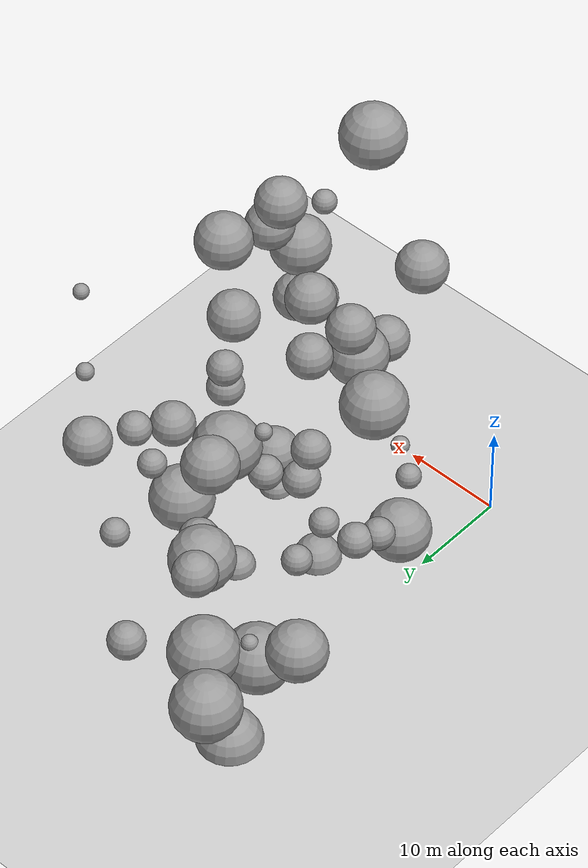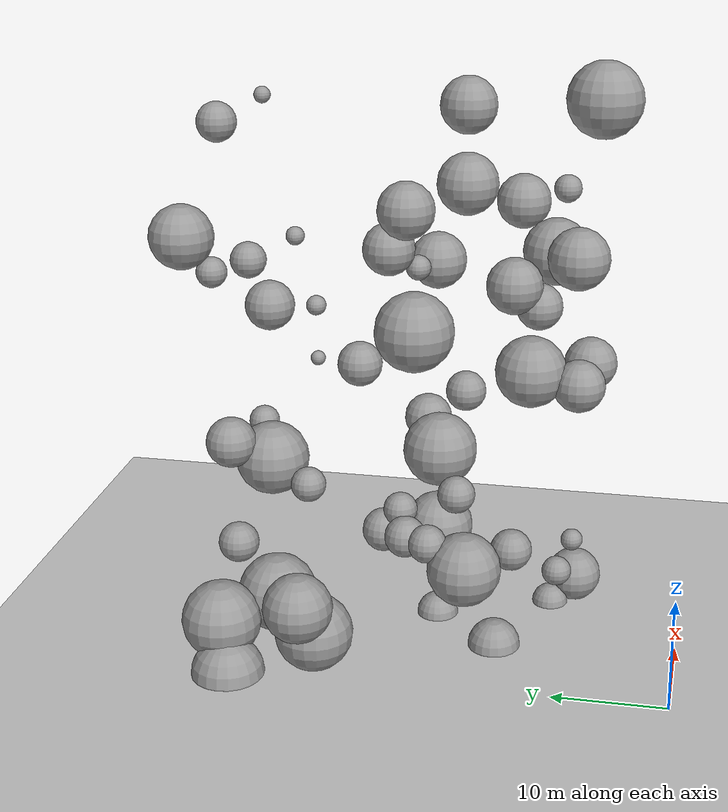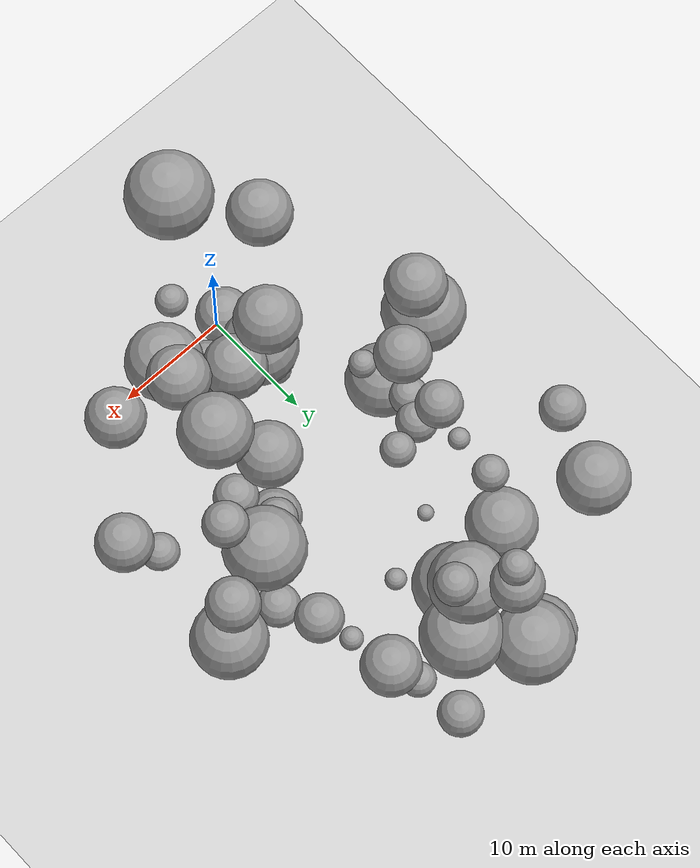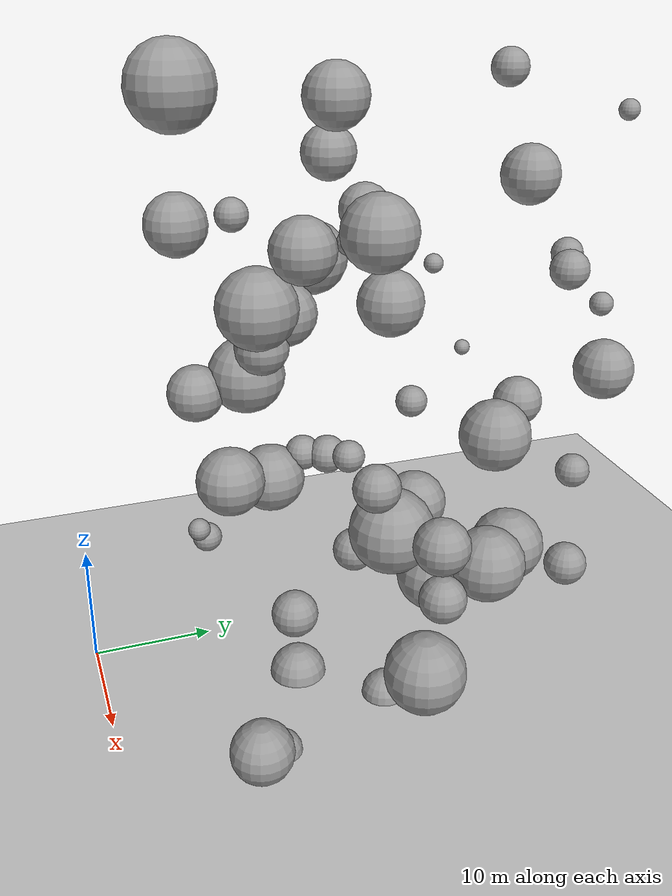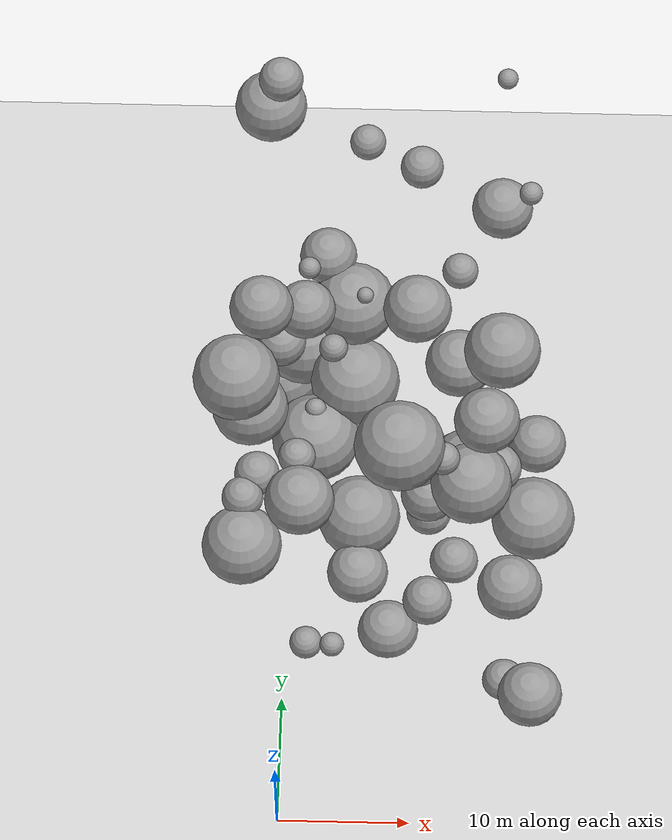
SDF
<sdf version="1.7">
 <world name="default">
  <model name="ground_plane">
   <static>1</static>
   <link name="link">
    <collision name="collision">
     <geometry><plane><normal>0 0 1</normal><size>100 100</size></plane></geometry>
     <surface>
      <contact><collide_bitmask>65535</collide_bitmask></contact>
      <friction><ode><mu>100</mu><mu2>50</mu2></ode></friction>
     </surface>
    </collision>
    <visual name="visual">
     <cast_shadows>0</cast_shadows>
     <geometry><plane><normal>0 0 1</normal><size>100 100</size></plane></geometry>
     <material>
      <script><uri>file://media/materials/scripts/gazebo.material</uri><name>Gazebo/Grey</name></script>
     </material>
    </visual>
   </link>
  </model>
  <model name="sphere_4">
   <static>1</static>
   <pose>16 38 47 0 0 0</pose>
   <link name="link">
    <inertial>
     <mass>164.46159977636265</mass>
     <inertia>
      <ixx>35.27294890430878</ixx>
      <iyy>35.27294890430878</iyy>
      <izz>35.27294890430878</izz>
      <ixy>0</ixy>
      <ixz>0</ixz>
      <iyz>0</iyz>
     </inertia>
    </inertial>
    <collision name="collision">
     <geometry><sphere><radius>0.732248741136081</radius></sphere></geometry>
    </collision>
    <visual name="visual">
     <geometry><sphere><radius>0.732248741136081</radius></sphere></geometry>
     <material>
      <script><uri>file://media/materials/scripts/gazebo.material</uri><name>Gazebo/Grey</name></script>
     </material>
    </visual>
   </link>
  </model>
  <model name="sphere_21">
   <static>1</static>
   <pose>6 40 34 0 0 0</pose>
   <link name="link">
    <inertial>
     <mass>948.6665397999582</mass>
     <inertia>
      <ixx>654.420492024396</ixx>
      <iyy>654.420492024396</iyy>
      <izz>654.420492024396</izz>
      <ixy>0</ixy>
      <ixz>0</ixz>
      <iyz>0</iyz>
     </inertia>
    </inertial>
    <collision name="collision">
     <geometry><sphere><radius>1.3132326080472079</radius></sphere></geometry>
    </collision>
    <visual name="visual">
     <geometry><sphere><radius>1.3132326080472079</radius></sphere></geometry>
     <material>
      <script><uri>file://media/materials/scripts/gazebo.material</uri><name>Gazebo/Grey</name></script>
     </material>
    </visual>
   </link>
  </model>
  <model name="sphere_29">
   <static>1</static>
   <pose>16 20 40 0 0 0</pose>
   <link name="link">
    <inertial>
     <mass>8313.901943358154</mass>
     <inertia>
      <ixx>24378.61797444489</ixx>
      <iyy>24378.61797444489</iyy>
      <izz>24378.61797444489</izz>
      <ixy>0</ixy>
      <ixz>0</ixz>
      <iyz>0</iyz>
     </inertia>
    </inertial>
    <collision name="collision">
     <geometry><sphere><radius>2.7075226362523988</radius></sphere></geometry>
    </collision>
    <visual name="visual">
     <geometry><sphere><radius>2.7075226362523988</radius></sphere></geometry>
     <material>
      <script><uri>file://media/materials/scripts/gazebo.material</uri><name>Gazebo/Grey</name></script>
     </material>
    </visual>
   </link>
  </model>
  <model name="sphere_38">
   <static>1</static>
   <pose>6 13 27 0 0 0</pose>
   <link name="link">
    <inertial>
     <mass>11012.262104970456</mass>
     <inertia>
      <ixx>38945.90657782049</ixx>
      <iyy>38945.90657782049</iyy>
      <izz>38945.90657782049</izz>
      <ixy>0</ixy>
      <ixz>0</ixz>
      <iyz>0</iyz>
     </inertia>
    </inertial>
    <collision name="collision">
     <geometry><sphere><radius>2.9734637165390647</radius></sphere></geometry>
    </collision>
    <visual name="visual">
     <geometry><sphere><radius>2.9734637165390647</radius></sphere></geometry>
     <material>
      <script><uri>file://media/materials/scripts/gazebo.material</uri><name>Gazebo/Grey</name></script>
     </material>
    </visual>
   </link>
  </model>
  <model name="sphere_43">
   <static>1</static>
   <pose>2 32 6 0 0 0</pose>
   <link name="link">
    <inertial>
     <mass>255.80845116134995</mass>
     <inertia>
      <ixx>73.65333202269129</ixx>
      <iyy>73.65333202269129</iyy>
      <izz>73.65333202269129</izz>
      <ixy>0</ixy>
      <ixz>0</ixz>
      <iyz>0</iyz>
     </inertia>
    </inertial>
    <collision name="collision">
     <geometry><sphere><radius>0.8484158231878176</radius></sphere></geometry>
    </collision>
    <visual name="visual">
     <geometry><sphere><radius>0.8484158231878176</radius></sphere></geometry>
     <material>
      <script><uri>file://media/materials/scripts/gazebo.material</uri><name>Gazebo/Grey</name></script>
     </material>
    </visual>
   </link>
  </model>
  <model name="sphere_44">
   <static>1</static>
   <pose>13 27 8 0 0 0</pose>
   <link name="link">
    <inertial>
     <mass>3346.033699596498</mass>
     <inertia>
      <ixx>5348.328852654719</ixx>
      <iyy>5348.328852654719</iyy>
      <izz>5348.328852654719</izz>
      <ixy>0</ixy>
      <ixz>0</ixz>
      <iyz>0</iyz>
     </inertia>
    </inertial>
    <collision name="collision">
     <geometry><sphere><radius>1.9990050922982885</radius></sphere></geometry>
    </collision>
    <visual name="visual">
     <geometry><sphere><radius>1.9990050922982885</radius></sphere></geometry>
     <material>
      <script><uri>file://media/materials/scripts/gazebo.material</uri><name>Gazebo/Grey</name></script>
     </material>
    </visual>
   </link>
  </model>
  <model name="sphere_50">
   <static>1</static>
   <pose>4 9 13 0 0 0</pose>
   <link name="link">
    <inertial>
     <mass>311.5289111056171</mass>
     <inertia>
      <ixx>102.28960784428814</ixx>
      <iyy>102.28960784428814</iyy>
      <izz>102.28960784428814</izz>
      <ixy>0</ixy>
      <ixz>0</ixz>
      <iyz>0</iyz>
     </inertia>
    </inertial>
    <collision name="collision">
     <geometry><sphere><radius>0.9060174923069318</radius></sphere></geometry>
    </collision>
    <visual name="visual">
     <geometry><sphere><radius>0.9060174923069318</radius></sphere></geometry>
     <material>
      <script><uri>file://media/materials/scripts/gazebo.material</uri><name>Gazebo/Grey</name></script>
     </material>
    </visual>
   </link>
  </model>
  <model name="sphere_59">
   <static>1</static>
   <pose>10 19 48 0 0 0</pose>
   <link name="link">
    <inertial>
     <mass>5522.667786096003</mass>
     <inertia>
      <ixx>12328.657388902782</ixx>
      <iyy>12328.657388902782</iyy>
      <izz>12328.657388902782</izz>
      <ixy>0</ixy>
      <ixz>0</ixz>
      <iyz>0</iyz>
     </inertia>
    </inertial>
    <collision name="collision">
     <geometry><sphere><radius>2.362400014546508</radius></sphere></geometry>
    </collision>
    <visual name="visual">
     <geometry><sphere><radius>2.362400014546508</radius></sphere></geometry>
     <material>
      <script><uri>file://media/materials/scripts/gazebo.material</uri><name>Gazebo/Grey</name></script>
     </material>
    </visual>
   </link>
  </model>
  <model name="sphere_75">
   <static>1</static>
   <pose>11 20 13 0 0 0</pose>
   <link name="link">
    <inertial>
     <mass>1990.0808988665112</mass>
     <inertia>
      <ixx>2249.669932823587</ixx>
      <iyy>2249.669932823587</iyy>
      <izz>2249.669932823587</izz>
      <ixy>0</ixy>
      <ixz>0</ixz>
      <iyz>0</iyz>
     </inertia>
    </inertial>
    <collision name="collision">
     <geometry><sphere><radius>1.6811019064408124</radius></sphere></geometry>
    </collision>
    <visual name="visual">
     <geometry><sphere><radius>1.6811019064408124</radius></sphere></geometry>
     <material>
      <script><uri>file://media/materials/scripts/gazebo.material</uri><name>Gazebo/Grey</name></script>
     </material>
    </visual>
   </link>
  </model>
  <model name="sphere_112">
   <static>1</static>
   <pose>14 12 35 0 0 0</pose>
   <link name="link">
    <inertial>
     <mass>9985.326316465182</mass>
     <inertia>
      <ixx>33082.9850346294</ixx>
      <iyy>33082.9850346294</iyy>
      <izz>33082.9850346294</izz>
      <ixy>0</ixy>
      <ixz>0</ixz>
      <iyz>0</iyz>
     </inertia>
    </inertial>
    <collision name="collision">
     <geometry><sphere><radius>2.8780028360772194</radius></sphere></geometry>
    </collision>
    <visual name="visual">
     <geometry><sphere><radius>2.8780028360772194</radius></sphere></geometry>
     <material>
      <script><uri>file://media/materials/scripts/gazebo.material</uri><name>Gazebo/Grey</name></script>
     </material>
    </visual>
   </link>
  </model>
  <model name="sphere_125">
   <static>1</static>
   <pose>4 22 36 0 0 0</pose>
   <link name="link">
    <inertial>
     <mass>443.5921031296742</mass>
     <inertia>
      <ixx>184.34891906320976</ixx>
      <iyy>184.34891906320976</iyy>
      <izz>184.34891906320976</izz>
      <ixy>0</ixy>
      <ixz>0</ixz>
      <iyz>0</iyz>
     </inertia>
    </inertial>
    <collision name="collision">
     <geometry><sphere><radius>1.019291491486583</radius></sphere></geometry>
    </collision>
    <visual name="visual">
     <geometry><sphere><radius>1.019291491486583</radius></sphere></geometry>
     <material>
      <script><uri>file://media/materials/scripts/gazebo.material</uri><name>Gazebo/Grey</name></script>
     </material>
    </visual>
   </link>
  </model>
  <model name="sphere_131">
   <static>1</static>
   <pose>11 13 31 0 0 0</pose>
   <link name="link">
    <inertial>
     <mass>3311.49689376639</mass>
     <inertia>
      <ixx>5256.639229539728</ixx>
      <iyy>5256.639229539728</iyy>
      <izz>5256.639229539728</izz>
      <ixy>0</ixy>
      <ixz>0</ixz>
      <iyz>0</iyz>
     </inertia>
    </inertial>
    <collision name="collision">
     <geometry><sphere><radius>1.9921035721734697</radius></sphere></geometry>
    </collision>
    <visual name="visual">
     <geometry><sphere><radius>1.9921035721734697</radius></sphere></geometry>
     <material>
      <script><uri>file://media/materials/scripts/gazebo.material</uri><name>Gazebo/Grey</name></script>
     </material>
    </visual>
   </link>
  </model>
  <model name="sphere_137">
   <static>1</static>
   <pose>12 11 41 0 0 0</pose>
   <link name="link">
    <inertial>
     <mass>654.1243881996492</mass>
     <inertia>
      <ixx>352.18281007678195</ixx>
      <iyy>352.18281007678195</iyy>
      <izz>352.18281007678195</izz>
      <ixy>0</ixy>
      <ixz>0</ixz>
      <iyz>0</iyz>
     </inertia>
    </inertial>
    <collision name="collision">
     <geometry><sphere><radius>1.1601760896681115</radius></sphere></geometry>
    </collision>
    <visual name="visual">
     <geometry><sphere><radius>1.1601760896681115</radius></sphere></geometry>
     <material>
      <script><uri>file://media/materials/scripts/gazebo.material</uri><name>Gazebo/Grey</name></script>
     </material>
    </visual>
   </link>
  </model>
  <model name="sphere_153">
   <static>1</static>
   <pose>16 20 21 0 0 0</pose>
   <link name="link">
    <inertial>
     <mass>2479.2162949740464</mass>
     <inertia>
      <ixx>3244.8275047282323</ixx>
      <iyy>3244.8275047282323</iyy>
      <izz>3244.8275047282323</izz>
      <ixy>0</ixy>
      <ixz>0</ixz>
      <iyz>0</iyz>
     </inertia>
    </inertial>
    <collision name="collision">
     <geometry><sphere><radius>1.808875192710845</radius></sphere></geometry>
    </collision>
    <visual name="visual">
     <geometry><sphere><radius>1.808875192710845</radius></sphere></geometry>
     <material>
      <script><uri>file://media/materials/scripts/gazebo.material</uri><name>Gazebo/Grey</name></script>
     </material>
    </visual>
   </link>
  </model>
  <model name="sphere_162">
   <static>1</static>
   <pose>13 38 18 0 0 0</pose>
   <link name="link">
    <inertial>
     <mass>1068.0213896733485</mass>
     <inertia>
      <ixx>797.322774612888</ixx>
      <iyy>797.322774612888</iyy>
      <izz>797.322774612888</izz>
      <ixy>0</ixy>
      <ixz>0</ixz>
      <iyz>0</iyz>
     </inertia>
    </inertial>
    <collision name="collision">
     <geometry><sphere><radius>1.366145996487226</radius></sphere></geometry>
    </collision>
    <visual name="visual">
     <geometry><sphere><radius>1.366145996487226</radius></sphere></geometry>
     <material>
      <script><uri>file://media/materials/scripts/gazebo.material</uri><name>Gazebo/Grey</name></script>
     </material>
    </visual>
   </link>
  </model>
  <model name="sphere_163">
   <static>1</static>
   <pose>15 15 39 0 0 0</pose>
   <link name="link">
    <inertial>
     <mass>5254.805257076216</mass>
     <inertia>
      <ixx>11348.243031948645</ixx>
      <iyy>11348.243031948645</iyy>
      <izz>11348.243031948645</izz>
      <ixy>0</ixy>
      <ixz>0</ixz>
      <iyz>0</iyz>
     </inertia>
    </inertial>
    <collision name="collision">
     <geometry><sphere><radius>2.3235713101690045</radius></sphere></geometry>
    </collision>
    <visual name="visual">
     <geometry><sphere><radius>2.3235713101690045</radius></sphere></geometry>
     <material>
      <script><uri>file://media/materials/scripts/gazebo.material</uri><name>Gazebo/Grey</name></script>
     </material>
    </visual>
   </link>
  </model>
  <model name="sphere_165">
   <static>1</static>
   <pose>10 40 7 0 0 0</pose>
   <link name="link">
    <inertial>
     <mass>2672.0694118069014</mass>
     <inertia>
      <ixx>3676.3242673150125</ixx>
      <iyy>3676.3242673150125</iyy>
      <izz>3676.3242673150125</izz>
      <ixy>0</ixy>
      <ixz>0</ixz>
      <iyz>0</iyz>
     </inertia>
    </inertial>
    <collision name="collision">
     <geometry><sphere><radius>1.854611899986677</radius></sphere></geometry>
    </collision>
    <visual name="visual">
     <geometry><sphere><radius>1.854611899986677</radius></sphere></geometry>
     <material>
      <script><uri>file://media/materials/scripts/gazebo.material</uri><name>Gazebo/Grey</name></script>
     </material>
    </visual>
   </link>
  </model>
  <model name="sphere_167">
   <static>1</static>
   <pose>1 23 16 0 0 0</pose>
   <link name="link">
    <inertial>
     <mass>1182.6059429184547</mass>
     <inertia>
      <ixx>944.9329945306743</ixx>
      <iyy>944.9329945306743</iyy>
      <izz>944.9329945306743</izz>
      <ixy>0</ixy>
      <ixz>0</ixz>
      <iyz>0</iyz>
     </inertia>
    </inertial>
    <collision name="collision">
     <geometry><sphere><radius>1.4133524712477168</radius></sphere></geometry>
    </collision>
    <visual name="visual">
     <geometry><sphere><radius>1.4133524712477168</radius></sphere></geometry>
     <material>
      <script><uri>file://media/materials/scripts/gazebo.material</uri><name>Gazebo/Grey</name></script>
     </material>
    </visual>
   </link>
  </model>
  <model name="sphere_182">
   <static>1</static>
   <pose>-3 31 8 0 0 0</pose>
   <link name="link">
    <inertial>
     <mass>10881.416856647636</mass>
     <inertia>
      <ixx>38177.72088226044</ixx>
      <iyy>38177.72088226044</iyy>
      <izz>38177.72088226044</izz>
      <ixy>0</ixy>
      <ixz>0</ixz>
      <iyz>0</iyz>
     </inertia>
    </inertial>
    <collision name="collision">
     <geometry><sphere><radius>2.96164008545378</radius></sphere></geometry>
    </collision>
    <visual name="visual">
     <geometry><sphere><radius>2.96164008545378</radius></sphere></geometry>
     <material>
      <script><uri>file://media/materials/scripts/gazebo.material</uri><name>Gazebo/Grey</name></script>
     </material>
    </visual>
   </link>
  </model>
  <model name="sphere_194">
   <static>1</static>
   <pose>19 24 17 0 0 0</pose>
   <link name="link">
    <inertial>
     <mass>4275.216462952202</mass>
     <inertia>
      <ixx>8046.328636886753</ixx>
      <iyy>8046.328636886753</iyy>
      <izz>8046.328636886753</izz>
      <ixy>0</ixy>
      <ixz>0</ixz>
      <iyz>0</iyz>
     </inertia>
    </inertial>
    <collision name="collision">
     <geometry><sphere><radius>2.1691512387065344</radius></sphere></geometry>
    </collision>
    <visual name="visual">
     <geometry><sphere><radius>2.1691512387065344</radius></sphere></geometry>
     <material>
      <script><uri>file://media/materials/scripts/gazebo.material</uri><name>Gazebo/Grey</name></script>
     </material>
    </visual>
   </link>
  </model>
  <model name="sphere_208">
   <static>1</static>
   <pose>8 16 0 0 0 0</pose>
   <link name="link">
    <inertial>
     <mass>5312.176043003261</mass>
     <inertia>
      <ixx>11555.489571984237</ixx>
      <iyy>11555.489571984237</iyy>
      <izz>11555.489571984237</izz>
      <ixy>0</ixy>
      <ixz>0</ixz>
      <iyz>0</iyz>
     </inertia>
    </inertial>
    <collision name="collision">
     <geometry><sphere><radius>2.3319967985383343</radius></sphere></geometry>
    </collision>
    <visual name="visual">
     <geometry><sphere><radius>2.3319967985383343</radius></sphere></geometry>
     <material>
      <script><uri>file://media/materials/scripts/gazebo.material</uri><name>Gazebo/Grey</name></script>
     </material>
    </visual>
   </link>
  </model>
  <model name="sphere_216">
   <static>1</static>
   <pose>17 9 24 0 0 0</pose>
   <link name="link">
    <inertial>
     <mass>5481.305595913256</mass>
     <inertia>
      <ixx>12175.148807501155</ixx>
      <iyy>12175.148807501155</iyy>
      <izz>12175.148807501155</izz>
      <ixy>0</ixy>
      <ixz>0</ixz>
      <iyz>0</iyz>
     </inertia>
    </inertial>
    <collision name="collision">
     <geometry><sphere><radius>2.3564874733198486</radius></sphere></geometry>
    </collision>
    <visual name="visual">
     <geometry><sphere><radius>2.3564874733198486</radius></sphere></geometry>
     <material>
      <script><uri>file://media/materials/scripts/gazebo.material</uri><name>Gazebo/Grey</name></script>
     </material>
    </visual>
   </link>
  </model>
  <model name="sphere_232">
   <static>1</static>
   <pose>11 15 8 0 0 0</pose>
   <link name="link">
    <inertial>
     <mass>2714.0062730713466</mass>
     <inertia>
      <ixx>3772.990082985671</ixx>
      <iyy>3772.990082985671</iyy>
      <izz>3772.990082985671</izz>
      <ixy>0</ixy>
      <ixz>0</ixz>
      <iyz>0</iyz>
     </inertia>
    </inertial>
    <collision name="collision">
     <geometry><sphere><radius>1.864263997557683</radius></sphere></geometry>
    </collision>
    <visual name="visual">
     <geometry><sphere><radius>1.864263997557683</radius></sphere></geometry>
     <material>
      <script><uri>file://media/materials/scripts/gazebo.material</uri><name>Gazebo/Grey</name></script>
     </material>
    </visual>
   </link>
  </model>
  <model name="sphere_237">
   <static>1</static>
   <pose>-1 40 39 0 0 0</pose>
   <link name="link">
    <inertial>
     <mass>7357.044652262761</mass>
     <inertia>
      <ixx>19884.128984690436</ixx>
      <iyy>19884.128984690436</iyy>
      <izz>19884.128984690436</izz>
      <ixy>0</ixy>
      <ixz>0</ixz>
      <iyz>0</iyz>
     </inertia>
    </inertial>
    <collision name="collision">
     <geometry><sphere><radius>2.5993908999376063</radius></sphere></geometry>
    </collision>
    <visual name="visual">
     <geometry><sphere><radius>2.5993908999376063</radius></sphere></geometry>
     <material>
      <script><uri>file://media/materials/scripts/gazebo.material</uri><name>Gazebo/Grey</name></script>
     </material>
    </visual>
   </link>
  </model>
  <model name="sphere_243">
   <static>1</static>
   <pose>6 31 27 0 0 0</pose>
   <link name="link">
    <inertial>
     <mass>99.78639328134766</mass>
     <inertia>
      <ixx>15.338626102531167</ixx>
      <iyy>15.338626102531167</iyy>
      <izz>15.338626102531167</izz>
      <ixy>0</ixy>
      <ixz>0</ixz>
      <iyz>0</iyz>
     </inertia>
    </inertial>
    <collision name="collision">
     <geometry><sphere><radius>0.6199084725803181</radius></sphere></geometry>
    </collision>
    <visual name="visual">
     <geometry><sphere><radius>0.6199084725803181</radius></sphere></geometry>
     <material>
      <script><uri>file://media/materials/scripts/gazebo.material</uri><name>Gazebo/Grey</name></script>
     </material>
    </visual>
   </link>
  </model>
  <model name="sphere_245">
   <static>1</static>
   <pose>-3 20 15 0 0 0</pose>
   <link name="link">
    <inertial>
     <mass>1616.43670139497</mass>
     <inertia>
      <ixx>1590.738367623934</ixx>
      <iyy>1590.738367623934</iyy>
      <izz>1590.738367623934</izz>
      <ixy>0</ixy>
      <ixz>0</ixz>
      <iyz>0</iyz>
     </inertia>
    </inertial>
    <collision name="collision">
     <geometry><sphere><radius>1.5685198930720932</radius></sphere></geometry>
    </collision>
    <visual name="visual">
     <geometry><sphere><radius>1.5685198930720932</radius></sphere></geometry>
     <material>
      <script><uri>file://media/materials/scripts/gazebo.material</uri><name>Gazebo/Grey</name></script>
     </material>
    </visual>
   </link>
  </model>
  <model name="sphere_250">
   <static>1</static>
   <pose>2 31 3 0 0 0</pose>
   <link name="link">
    <inertial>
     <mass>16967.333123914286</mass>
     <inertia>
      <ixx>80049.18157189076</ixx>
      <iyy>80049.18157189076</iyy>
      <izz>80049.18157189076</izz>
      <ixy>0</ixy>
      <ixz>0</ixz>
      <iyz>0</iyz>
     </inertia>
    </inertial>
    <collision name="collision">
     <geometry><sphere><radius>3.434327117554157</radius></sphere></geometry>
    </collision>
    <visual name="visual">
     <geometry><sphere><radius>3.434327117554157</radius></sphere></geometry>
     <material>
      <script><uri>file://media/materials/scripts/gazebo.material</uri><name>Gazebo/Grey</name></script>
     </material>
    </visual>
   </link>
  </model>
  <model name="sphere_254">
   <static>1</static>
   <pose>3 38 20 0 0 0</pose>
   <link name="link">
    <inertial>
     <mass>4206.470600862838</mass>
     <inertia>
      <ixx>7831.843761274302</ixx>
      <iyy>7831.843761274302</iyy>
      <izz>7831.843761274302</izz>
      <ixy>0</ixy>
      <ixz>0</ixz>
      <iyz>0</iyz>
     </inertia>
    </inertial>
    <collision name="collision">
     <geometry><sphere><radius>2.1574616412657566</radius></sphere></geometry>
    </collision>
    <visual name="visual">
     <geometry><sphere><radius>2.1574616412657566</radius></sphere></geometry>
     <material>
      <script><uri>file://media/materials/scripts/gazebo.material</uri><name>Gazebo/Grey</name></script>
     </material>
    </visual>
   </link>
  </model>
  <model name="sphere_265">
   <static>1</static>
   <pose>5 35 17 0 0 0</pose>
   <link name="link">
    <inertial>
     <mass>1112.0853843560833</mass>
     <inertia>
      <ixx>852.899396033848</ixx>
      <iyy>852.899396033848</iyy>
      <izz>852.899396033848</izz>
      <ixy>0</ixy>
      <ixz>0</ixz>
      <iyz>0</iyz>
     </inertia>
    </inertial>
    <collision name="collision">
     <geometry><sphere><radius>1.3846813449998965</radius></sphere></geometry>
    </collision>
    <visual name="visual">
     <geometry><sphere><radius>1.3846813449998965</radius></sphere></geometry>
     <material>
      <script><uri>file://media/materials/scripts/gazebo.material</uri><name>Gazebo/Grey</name></script>
     </material>
    </visual>
   </link>
  </model>
  <model name="sphere_267">
   <static>1</static>
   <pose>6 9 26 0 0 0</pose>
   <link name="link">
    <inertial>
     <mass>4397.059363129187</mass>
     <inertia>
      <ixx>8432.1463049879</ixx>
      <iyy>8432.1463049879</iyy>
      <izz>8432.1463049879</izz>
      <ixy>0</ixy>
      <ixz>0</ixz>
      <iyz>0</iyz>
     </inertia>
    </inertial>
    <collision name="collision">
     <geometry><sphere><radius>2.189565323866061</radius></sphere></geometry>
    </collision>
    <visual name="visual">
     <geometry><sphere><radius>2.189565323866061</radius></sphere></geometry>
     <material>
      <script><uri>file://media/materials/scripts/gazebo.material</uri><name>Gazebo/Grey</name></script>
     </material>
    </visual>
   </link>
  </model>
  <model name="sphere_287">
   <static>1</static>
   <pose>-2 30 19 0 0 0</pose>
   <link name="link">
    <inertial>
     <mass>1232.380148762025</mass>
     <inertia>
      <ixx>1012.143464636012</ixx>
      <iyy>1012.143464636012</iyy>
      <izz>1012.143464636012</izz>
      <ixy>0</ixy>
      <ixz>0</ixz>
      <iyz>0</iyz>
     </inertia>
    </inertial>
    <collision name="collision">
     <geometry><sphere><radius>1.432909278675701</radius></sphere></geometry>
    </collision>
    <visual name="visual">
     <geometry><sphere><radius>1.432909278675701</radius></sphere></geometry>
     <material>
      <script><uri>file://media/materials/scripts/gazebo.material</uri><name>Gazebo/Grey</name></script>
     </material>
    </visual>
   </link>
  </model>
  <model name="sphere_292">
   <static>1</static>
   <pose>19 10 2 0 0 0</pose>
   <link name="link">
    <inertial>
     <mass>6312.510087615215</mass>
     <inertia>
      <ixx>15405.331934128468</ixx>
      <iyy>15405.331934128468</iyy>
      <izz>15405.331934128468</izz>
      <ixy>0</ixy>
      <ixz>0</ixz>
      <iyz>0</iyz>
     </inertia>
    </inertial>
    <collision name="collision">
     <geometry><sphere><radius>2.470042875794232</radius></sphere></geometry>
    </collision>
    <visual name="visual">
     <geometry><sphere><radius>2.470042875794232</radius></sphere></geometry>
     <material>
      <script><uri>file://media/materials/scripts/gazebo.material</uri><name>Gazebo/Grey</name></script>
     </material>
    </visual>
   </link>
  </model>
  <model name="sphere_298">
   <static>1</static>
   <pose>14 22 16 0 0 0</pose>
   <link name="link">
    <inertial>
     <mass>15404.589096643234</mass>
     <inertia>
      <ixx>68142.45600631772</ixx>
      <iyy>68142.45600631772</iyy>
      <izz>68142.45600631772</izz>
      <ixy>0</ixy>
      <ixz>0</ixz>
      <iyz>0</iyz>
     </inertia>
    </inertial>
    <collision name="collision">
     <geometry><sphere><radius>3.325476141599288</radius></sphere></geometry>
    </collision>
    <visual name="visual">
     <geometry><sphere><radius>3.325476141599288</radius></sphere></geometry>
     <material>
      <script><uri>file://media/materials/scripts/gazebo.material</uri><name>Gazebo/Grey</name></script>
     </material>
    </visual>
   </link>
  </model>
  <model name="sphere_328">
   <static>1</static>
   <pose>5 35 18 0 0 0</pose>
   <link name="link">
    <inertial>
     <mass>13164.401021129856</mass>
     <inertia>
      <ixx>52440.81400650292</ixx>
      <iyy>52440.81400650292</iyy>
      <izz>52440.81400650292</izz>
      <ixy>0</ixy>
      <ixz>0</ixz>
      <iyz>0</iyz>
     </inertia>
    </inertial>
    <collision name="collision">
     <geometry><sphere><radius>3.1557614362780795</radius></sphere></geometry>
    </collision>
    <visual name="visual">
     <geometry><sphere><radius>3.1557614362780795</radius></sphere></geometry>
     <material>
      <script><uri>file://media/materials/scripts/gazebo.material</uri><name>Gazebo/Grey</name></script>
     </material>
    </visual>
   </link>
  </model>
  <model name="sphere_331">
   <static>1</static>
   <pose>17 12 0 0 0 0</pose>
   <link name="link">
    <inertial>
     <mass>1852.2052452501803</mass>
     <inertia>
      <ixx>1995.9489751470903</ixx>
      <iyy>1995.9489751470903</iyy>
      <izz>1995.9489751470903</izz>
      <ixy>0</ixy>
      <ixz>0</ixz>
      <iyz>0</iyz>
     </inertia>
    </inertial>
    <collision name="collision">
     <geometry><sphere><radius>1.6413460971477773</radius></sphere></geometry>
    </collision>
    <visual name="visual">
     <geometry><sphere><radius>1.6413460971477773</radius></sphere></geometry>
     <material>
      <script><uri>file://media/materials/scripts/gazebo.material</uri><name>Gazebo/Grey</name></script>
     </material>
    </visual>
   </link>
  </model>
  <model name="sphere_357">
   <static>1</static>
   <pose>-2 22 15 0 0 0</pose>
   <link name="link">
    <inertial>
     <mass>2042.3462442343737</mass>
     <inertia>
      <ixx>2349.0010102441843</ixx>
      <iyy>2349.0010102441843</iyy>
      <izz>2349.0010102441843</izz>
      <ixy>0</ixy>
      <ixz>0</ixz>
      <iyz>0</iyz>
     </inertia>
    </inertial>
    <collision name="collision">
     <geometry><sphere><radius>1.6956918022134906</radius></sphere></geometry>
    </collision>
    <visual name="visual">
     <geometry><sphere><radius>1.6956918022134906</radius></sphere></geometry>
     <material>
      <script><uri>file://media/materials/scripts/gazebo.material</uri><name>Gazebo/Grey</name></script>
     </material>
    </visual>
   </link>
  </model>
  <model name="sphere_370">
   <static>1</static>
   <pose>19 23 6 0 0 0</pose>
   <link name="link">
    <inertial>
     <mass>13757.62138228327</mass>
     <inertia>
      <ixx>56438.20255239414</ixx>
      <iyy>56438.20255239414</iyy>
      <izz>56438.20255239414</izz>
      <ixy>0</ixy>
      <ixz>0</ixz>
      <iyz>0</iyz>
     </inertia>
    </inertial>
    <collision name="collision">
     <geometry><sphere><radius>3.20246885394878</radius></sphere></geometry>
    </collision>
    <visual name="visual">
     <geometry><sphere><radius>3.20246885394878</radius></sphere></geometry>
     <material>
      <script><uri>file://media/materials/scripts/gazebo.material</uri><name>Gazebo/Grey</name></script>
     </material>
    </visual>
   </link>
  </model>
  <model name="sphere_371">
   <static>1</static>
   <pose>16 38 28 0 0 0</pose>
   <link name="link">
    <inertial>
     <mass>4834.850212049839</mass>
     <inertia>
      <ixx>9877.323807851384</ixx>
      <iyy>9877.323807851384</iyy>
      <izz>9877.323807851384</izz>
      <ixy>0</ixy>
      <ixz>0</ixz>
      <iyz>0</iyz>
     </inertia>
    </inertial>
    <collision name="collision">
     <geometry><sphere><radius>2.2599463959503483</radius></sphere></geometry>
    </collision>
    <visual name="visual">
     <geometry><sphere><radius>2.2599463959503483</radius></sphere></geometry>
     <material>
      <script><uri>file://media/materials/scripts/gazebo.material</uri><name>Gazebo/Grey</name></script>
     </material>
    </visual>
   </link>
  </model>
  <model name="sphere_373">
   <static>1</static>
   <pose>-3 17 13 0 0 0</pose>
   <link name="link">
    <inertial>
     <mass>11449.687747194102</mass>
     <inertia>
      <ixx>41558.224986409936</ixx>
      <iyy>41558.224986409936</iyy>
      <izz>41558.224986409936</izz>
      <ixy>0</ixy>
      <ixz>0</ixz>
      <iyz>0</iyz>
     </inertia>
    </inertial>
    <collision name="collision">
     <geometry><sphere><radius>3.012323971596971</radius></sphere></geometry>
    </collision>
    <visual name="visual">
     <geometry><sphere><radius>3.012323971596971</radius></sphere></geometry>
     <material>
      <script><uri>file://media/materials/scripts/gazebo.material</uri><name>Gazebo/Grey</name></script>
     </material>
    </visual>
   </link>
  </model>
  <model name="sphere_377">
   <static>1</static>
   <pose>2 9 38 0 0 0</pose>
   <link name="link">
    <inertial>
     <mass>6240.551424020738</mass>
     <inertia>
      <ixx>15113.760256193205</ixx>
      <iyy>15113.760256193205</iyy>
      <izz>15113.760256193205</izz>
      <ixy>0</ixy>
      <ixz>0</ixz>
      <iyz>0</iyz>
     </inertia>
    </inertial>
    <collision name="collision">
     <geometry><sphere><radius>2.4606213371625847</radius></sphere></geometry>
    </collision>
    <visual name="visual">
     <geometry><sphere><radius>2.4606213371625847</radius></sphere></geometry>
     <material>
      <script><uri>file://media/materials/scripts/gazebo.material</uri><name>Gazebo/Grey</name></script>
     </material>
    </visual>
   </link>
  </model>
  <model name="sphere_394">
   <static>1</static>
   <pose>2 24 38 0 0 0</pose>
   <link name="link">
    <inertial>
     <mass>3935.762629266643</mass>
     <inertia>
      <ixx>7009.9633598908595</ixx>
      <iyy>7009.9633598908595</iyy>
      <izz>7009.9633598908595</izz>
      <ixy>0</ixy>
      <ixz>0</ixz>
      <iyz>0</iyz>
     </inertia>
    </inertial>
    <collision name="collision">
     <geometry><sphere><radius>2.110150491969926</radius></sphere></geometry>
    </collision>
    <visual name="visual">
     <geometry><sphere><radius>2.110150491969926</radius></sphere></geometry>
     <material>
      <script><uri>file://media/materials/scripts/gazebo.material</uri><name>Gazebo/Grey</name></script>
     </material>
    </visual>
   </link>
  </model>
  <model name="sphere_408">
   <static>1</static>
   <pose>-1 22 42 0 0 0</pose>
   <link name="link">
    <inertial>
     <mass>4821.587950295625</mass>
     <inertia>
      <ixx>9832.208366358263</ixx>
      <iyy>9832.208366358263</iyy>
      <izz>9832.208366358263</izz>
      <ixy>0</ixy>
      <ixz>0</ixz>
      <iyz>0</iyz>
     </inertia>
    </inertial>
    <collision name="collision">
     <geometry><sphere><radius>2.2578781176425347</radius></sphere></geometry>
    </collision>
    <visual name="visual">
     <geometry><sphere><radius>2.2578781176425347</radius></sphere></geometry>
     <material>
      <script><uri>file://media/materials/scripts/gazebo.material</uri><name>Gazebo/Grey</name></script>
     </material>
    </visual>
   </link>
  </model>
  <model name="sphere_420">
   <static>1</static>
   <pose>13 22 0 0 0 0</pose>
   <link name="link">
    <inertial>
     <mass>2771.7961022288714</mass>
     <inertia>
      <ixx>3907.8364970780735</ixx>
      <iyy>3907.8364970780735</iyy>
      <izz>3907.8364970780735</izz>
      <ixy>0</ixy>
      <ixz>0</ixz>
      <iyz>0</iyz>
     </inertia>
    </inertial>
    <collision name="collision">
     <geometry><sphere><radius>1.8774032130842224</radius></sphere></geometry>
    </collision>
    <visual name="visual">
     <geometry><sphere><radius>1.8774032130842224</radius></sphere></geometry>
     <material>
      <script><uri>file://media/materials/scripts/gazebo.material</uri><name>Gazebo/Grey</name></script>
     </material>
    </visual>
   </link>
  </model>
  <model name="sphere_424">
   <static>1</static>
   <pose>2 10 11 0 0 0</pose>
   <link name="link">
    <inertial>
     <mass>755.6072657798178</mass>
     <inertia>
      <ixx>447.8794409067951</ixx>
      <iyy>447.8794409067951</iyy>
      <izz>447.8794409067951</izz>
      <ixy>0</ixy>
      <ixz>0</ixz>
      <iyz>0</iyz>
     </inertia>
    </inertial>
    <collision name="collision">
     <geometry><sphere><radius>1.2173136877630424</radius></sphere></geometry>
    </collision>
    <visual name="visual">
     <geometry><sphere><radius>1.2173136877630424</radius></sphere></geometry>
     <material>
      <script><uri>file://media/materials/scripts/gazebo.material</uri><name>Gazebo/Grey</name></script>
     </material>
    </visual>
   </link>
  </model>
  <model name="sphere_425">
   <static>1</static>
   <pose>13 22 34 0 0 0</pose>
   <link name="link">
    <inertial>
     <mass>6044.480443507812</mass>
     <inertia>
      <ixx>14330.649686388622</ixx>
      <iyy>14330.649686388622</iyy>
      <izz>14330.649686388622</izz>
      <ixy>0</ixy>
      <ixz>0</ixz>
      <iyz>0</iyz>
     </inertia>
    </inertial>
    <collision name="collision">
     <geometry><sphere><radius>2.4345766692978916</radius></sphere></geometry>
    </collision>
    <visual name="visual">
     <geometry><sphere><radius>2.4345766692978916</radius></sphere></geometry>
     <material>
      <script><uri>file://media/materials/scripts/gazebo.material</uri><name>Gazebo/Grey</name></script>
     </material>
    </visual>
   </link>
  </model>
  <model name="sphere_426">
   <static>1</static>
   <pose>0 26 29 0 0 0</pose>
   <link name="link">
    <inertial>
     <mass>2455.248035462063</mass>
     <inertia>
      <ixx>3192.712937889255</ixx>
      <iyy>3192.712937889255</iyy>
      <izz>3192.712937889255</izz>
      <ixy>0</ixy>
      <ixz>0</ixz>
      <iyz>0</iyz>
     </inertia>
    </inertial>
    <collision name="collision">
     <geometry><sphere><radius>1.8030270998628735</radius></sphere></geometry>
    </collision>
    <visual name="visual">
     <geometry><sphere><radius>1.8030270998628735</radius></sphere></geometry>
     <material>
      <script><uri>file://media/materials/scripts/gazebo.material</uri><name>Gazebo/Grey</name></script>
     </material>
    </visual>
   </link>
  </model>
  <model name="sphere_431">
   <static>1</static>
   <pose>-3 21 33 0 0 0</pose>
   <link name="link">
    <inertial>
     <mass>12924.148708557306</mass>
     <inertia>
      <ixx>50855.44933897243</ixx>
      <iyy>50855.44933897243</iyy>
      <izz>50855.44933897243</izz>
      <ixy>0</ixy>
      <ixz>0</ixz>
      <iyz>0</iyz>
     </inertia>
    </inertial>
    <collision name="collision">
     <geometry><sphere><radius>3.1364457424828758</radius></sphere></geometry>
    </collision>
    <visual name="visual">
     <geometry><sphere><radius>3.1364457424828758</radius></sphere></geometry>
     <material>
      <script><uri>file://media/materials/scripts/gazebo.material</uri><name>Gazebo/Grey</name></script>
     </material>
    </visual>
   </link>
  </model>
  <model name="sphere_434">
   <static>1</static>
   <pose>10 15 33 0 0 0</pose>
   <link name="link">
    <inertial>
     <mass>5846.102477704732</mass>
     <inertia>
      <ixx>13555.377761879105</ixx>
      <iyy>13555.377761879105</iyy>
      <izz>13555.377761879105</izz>
      <ixy>0</ixy>
      <ixz>0</ixz>
      <iyz>0</iyz>
     </inertia>
    </inertial>
    <collision name="collision">
     <geometry><sphere><radius>2.4076458481195444</radius></sphere></geometry>
    </collision>
    <visual name="visual">
     <geometry><sphere><radius>2.4076458481195444</radius></sphere></geometry>
     <material>
      <script><uri>file://media/materials/scripts/gazebo.material</uri><name>Gazebo/Grey</name></script>
     </material>
    </visual>
   </link>
  </model>
  <model name="sphere_436">
   <static>1</static>
   <pose>18 36 34 0 0 0</pose>
   <link name="link">
    <inertial>
     <mass>254.97395594813187</mass>
     <inertia>
      <ixx>73.25331595937305</ixx>
      <iyy>73.25331595937305</iyy>
      <izz>73.25331595937305</izz>
      <ixy>0</ixy>
      <ixz>0</ixz>
      <iyz>0</iyz>
     </inertia>
    </inertial>
    <collision name="collision">
     <geometry><sphere><radius>0.8474922542523714</radius></sphere></geometry>
    </collision>
    <visual name="visual">
     <geometry><sphere><radius>0.8474922542523714</radius></sphere></geometry>
     <material>
      <script><uri>file://media/materials/scripts/gazebo.material</uri><name>Gazebo/Grey</name></script>
     </material>
    </visual>
   </link>
  </model>
  <model name="sphere_447">
   <static>1</static>
   <pose>2 30 33 0 0 0</pose>
   <link name="link">
    <inertial>
     <mass>219.443373910211</mass>
     <inertia>
      <ixx>57.04335206354368</ixx>
      <iyy>57.04335206354368</iyy>
      <izz>57.04335206354368</izz>
      <ixy>0</ixy>
      <ixz>0</ixz>
      <iyz>0</iyz>
     </inertia>
    </inertial>
    <collision name="collision">
     <geometry><sphere><radius>0.8061415155929843</radius></sphere></geometry>
    </collision>
    <visual name="visual">
     <geometry><sphere><radius>0.8061415155929843</radius></sphere></geometry>
     <material>
      <script><uri>file://media/materials/scripts/gazebo.material</uri><name>Gazebo/Grey</name></script>
     </material>
    </visual>
   </link>
  </model>
  <model name="sphere_455">
   <static>1</static>
   <pose>9 8 49 0 0 0</pose>
   <link name="link">
    <inertial>
     <mass>12525.510819534866</mass>
     <inertia>
      <ixx>48268.07688776124</ixx>
      <iyy>48268.07688776124</iyy>
      <izz>48268.07688776124</izz>
      <ixy>0</ixy>
      <ixz>0</ixz>
      <iyz>0</iyz>
     </inertia>
    </inertial>
    <collision name="collision">
     <geometry><sphere><radius>3.1038611072442177</radius></sphere></geometry>
    </collision>
    <visual name="visual">
     <geometry><sphere><radius>3.1038611072442177</radius></sphere></geometry>
     <material>
      <script><uri>file://media/materials/scripts/gazebo.material</uri><name>Gazebo/Grey</name></script>
     </material>
    </visual>
   </link>
  </model>
  <model name="sphere_461">
   <static>1</static>
   <pose>1 39 4 0 0 0</pose>
   <link name="link">
    <inertial>
     <mass>17599.70087123023</mass>
     <inertia>
      <ixx>85083.05251249712</ixx>
      <iyy>85083.05251249712</iyy>
      <izz>85083.05251249712</izz>
      <ixy>0</ixy>
      <ixz>0</ixz>
      <iyz>0</iyz>
     </inertia>
    </inertial>
    <collision name="collision">
     <geometry><sphere><radius>3.476473253034689</radius></sphere></geometry>
    </collision>
    <visual name="visual">
     <geometry><sphere><radius>3.476473253034689</radius></sphere></geometry>
     <material>
      <script><uri>file://media/materials/scripts/gazebo.material</uri><name>Gazebo/Grey</name></script>
     </material>
    </visual>
   </link>
  </model>
  <model name="sphere_469">
   <static>1</static>
   <pose>-1 38 0 0 0 0</pose>
   <link name="link">
    <inertial>
     <mass>13763.616274697853</mass>
     <inertia>
      <ixx>56479.19681110215</ixx>
      <iyy>56479.19681110215</iyy>
      <izz>56479.19681110215</izz>
      <ixy>0</ixy>
      <ixz>0</ixz>
      <iyz>0</iyz>
     </inertia>
    </inertial>
    <collision name="collision">
     <geometry><sphere><radius>3.202933945692041</radius></sphere></geometry>
    </collision>
    <visual name="visual">
     <geometry><sphere><radius>3.202933945692041</radius></sphere></geometry>
     <material>
      <script><uri>file://media/materials/scripts/gazebo.material</uri><name>Gazebo/Grey</name></script>
     </material>
    </visual>
   </link>
  </model>
  <model name="sphere_470">
   <static>1</static>
   <pose>0 37 48 0 0 0</pose>
   <link name="link">
    <inertial>
     <mass>1635.7821110759578</mass>
     <inertia>
      <ixx>1622.594536004415</ixx>
      <iyy>1622.594536004415</iyy>
      <izz>1622.594536004415</izz>
      <ixy>0</ixy>
      <ixz>0</ixz>
      <iyz>0</iyz>
     </inertia>
    </inertial>
    <collision name="collision">
     <geometry><sphere><radius>1.5747524101593684</radius></sphere></geometry>
    </collision>
    <visual name="visual">
     <geometry><sphere><radius>1.5747524101593684</radius></sphere></geometry>
     <material>
      <script><uri>file://media/materials/scripts/gazebo.material</uri><name>Gazebo/Grey</name></script>
     </material>
    </visual>
   </link>
  </model>
  <model name="sphere_474">
   <static>1</static>
   <pose>5 35 5 0 0 0</pose>
   <link name="link">
    <inertial>
     <mass>17579.059372424796</mass>
     <inertia>
      <ixx>84916.80394405495</ixx>
      <iyy>84916.80394405495</iyy>
      <izz>84916.80394405495</izz>
      <ixy>0</ixy>
      <ixz>0</ixz>
      <iyz>0</iyz>
     </inertia>
    </inertial>
    <collision name="collision">
     <geometry><sphere><radius>3.475113614570387</radius></sphere></geometry>
    </collision>
    <visual name="visual">
     <geometry><sphere><radius>3.475113614570387</radius></sphere></geometry>
     <material>
      <script><uri>file://media/materials/scripts/gazebo.material</uri><name>Gazebo/Grey</name></script>
     </material>
    </visual>
   </link>
  </model>
  <model name="sphere_495">
   <static>1</static>
   <pose>10 38 34 0 0 0</pose>
   <link name="link">
    <inertial>
     <mass>1618.7049037984352</mass>
     <inertia>
      <ixx>1594.4603444601019</ixx>
      <iyy>1594.4603444601019</iyy>
      <izz>1594.4603444601019</izz>
      <ixy>0</ixy>
      <ixz>0</ixz>
      <iyz>0</iyz>
     </inertia>
    </inertial>
    <collision name="collision">
     <geometry><sphere><radius>1.569253205178962</radius></sphere></geometry>
    </collision>
    <visual name="visual">
     <geometry><sphere><radius>1.569253205178962</radius></sphere></geometry>
     <material>
      <script><uri>file://media/materials/scripts/gazebo.material</uri><name>Gazebo/Grey</name></script>
     </material>
    </visual>
   </link>
  </model>
 </world>
</sdf>
